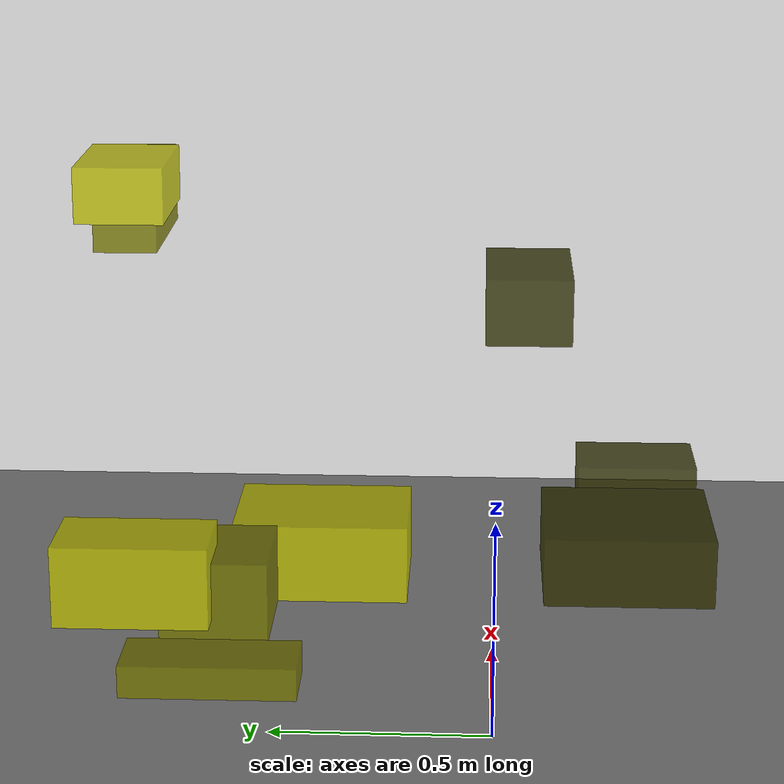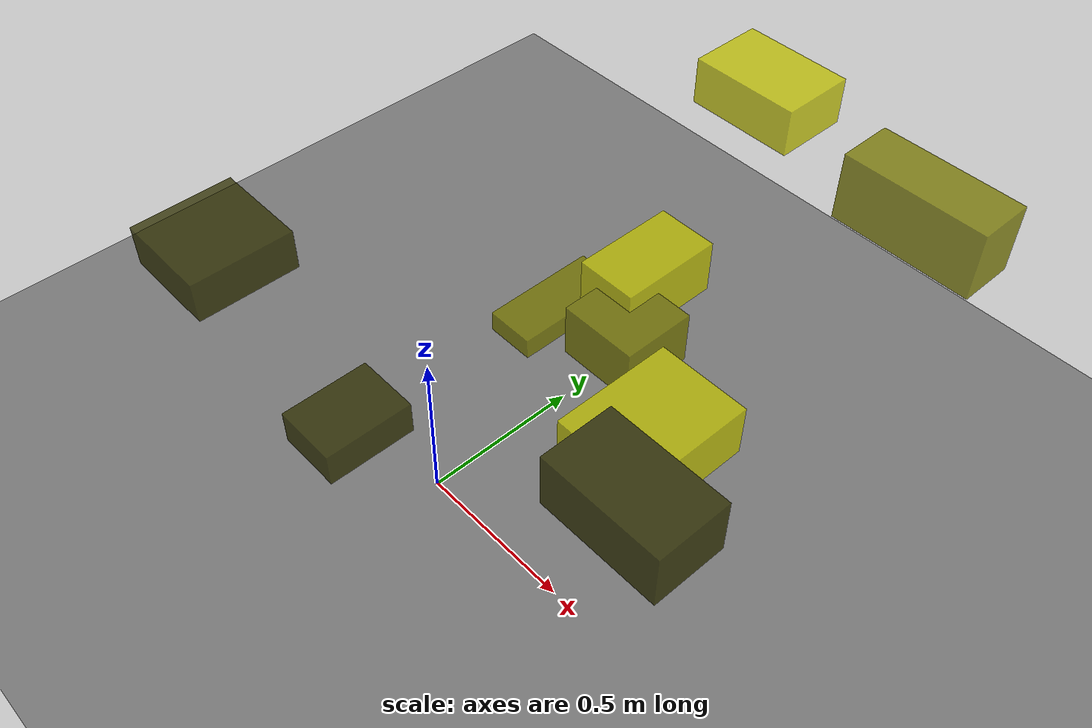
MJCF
<?xml version="1.0"?>
<mujoco model="obstacle_scene">
  <compiler angle="radian" coordinate="local"/>
  <option timestep="0.001" gravity="0 0 -9.81"/>

  <asset>
    <material name="obstacle_mat" rgba="0.8 0.8 0.0 0.8"/>
    <material name="ground_mat" rgba="0.5 0.5 0.5 1"/>
  </asset>

  <worldbody>
    <!-- Ground plane -->
    <geom name="ground" type="plane" size="3 3 0.1" material="ground_mat"/>

    <!-- Obstacles -->
    <body name="obstacle_0" pos="-0.594197 -0.239812 0.673415">
      <geom name="obs_0" type="box" size="0.151880 0.156344 0.063925" rgba="0.2 0.2 0.0 0.8"/>
    </body>
    <body name="obstacle_1" pos="-0.151667 0.606418 0.215164">
      <geom name="obs_1" type="box" size="0.080814 0.190268 0.035615" rgba="0.5 0.5 0.0 0.8"/>
    </body>
    <body name="obstacle_2" pos="0.040051 0.792461 0.358204">
      <geom name="obs_2" type="box" size="0.101642 0.171598 0.092281" rgba="0.8 0.8 0.0 0.8"/>
    </body>
    <body name="obstacle_3" pos="0.817944 -0.078138 0.802795">
      <geom name="obs_3" type="box" size="0.174265 0.104081 0.080487" rgba="0.2 0.2 0.0 0.8"/>
    </body>
    <body name="obstacle_4" pos="0.134897 0.618359 0.302287">
      <geom name="obs_4" type="box" size="0.130350 0.120787 0.091386" rgba="0.5 0.5 0.0 0.8"/>
    </body>
    <body name="obstacle_5" pos="0.347193 0.830284 1.168474">
      <geom name="obs_5" type="box" size="0.145836 0.098544 0.062165" rgba="0.8 0.8 0.0 0.8"/>
    </body>
    <body name="obstacle_6" pos="0.076992 -0.300026 0.586716">
      <geom name="obs_6" type="box" size="0.092351 0.124714 0.048978" rgba="0.2 0.2 0.0 0.8"/>
    </body>
    <body name="obstacle_7" pos="0.802335 0.881417 1.044246">
      <geom name="obs_7" type="box" size="0.194630 0.075443 0.094766" rgba="0.5 0.5 0.0 0.8"/>
    </body>
    <body name="obstacle_8" pos="0.446280 0.402963 0.289518">
      <geom name="obs_8" type="box" size="0.155109 0.202491 0.090310" rgba="0.8 0.8 0.0 0.8"/>
    </body>
  </worldbody>
</mujoco>
